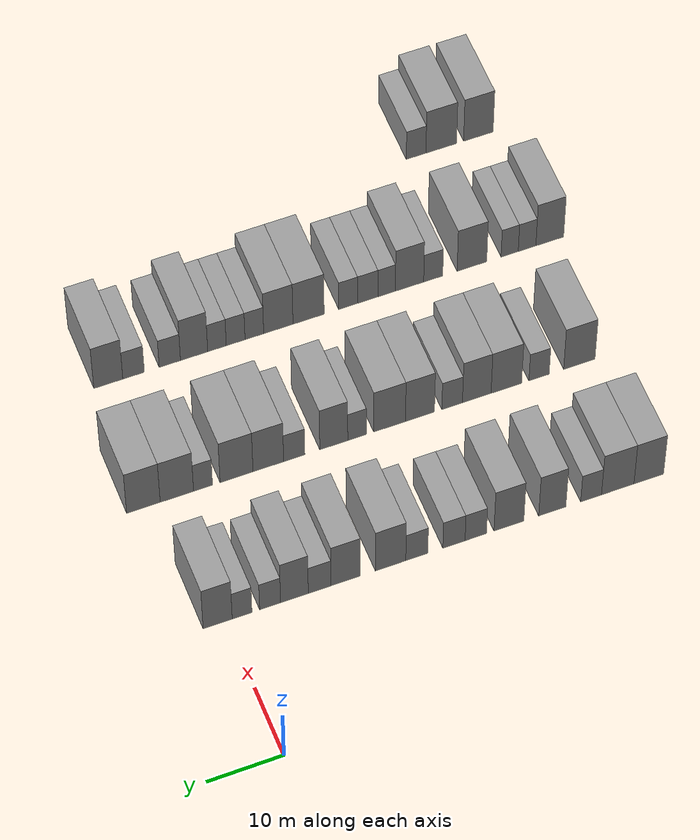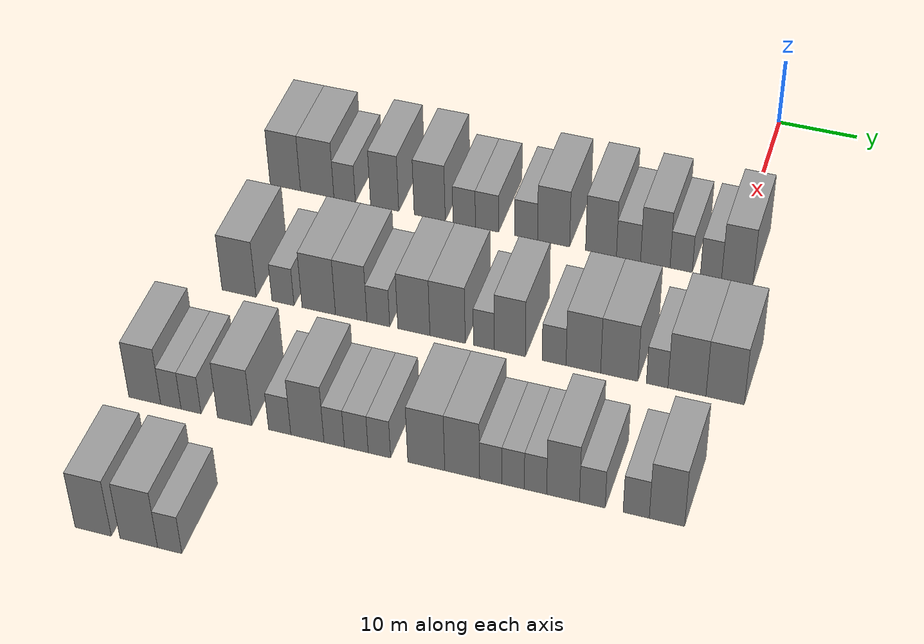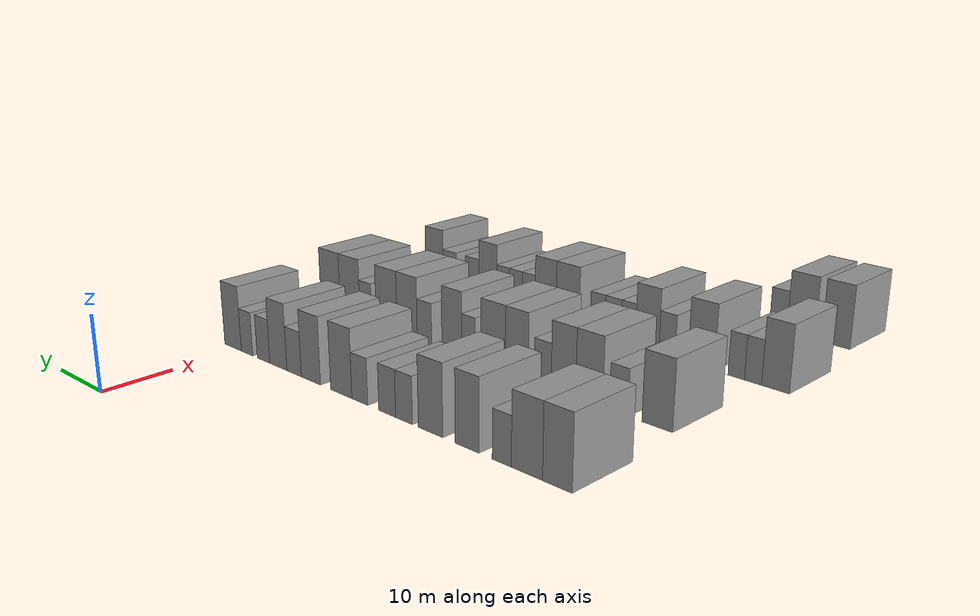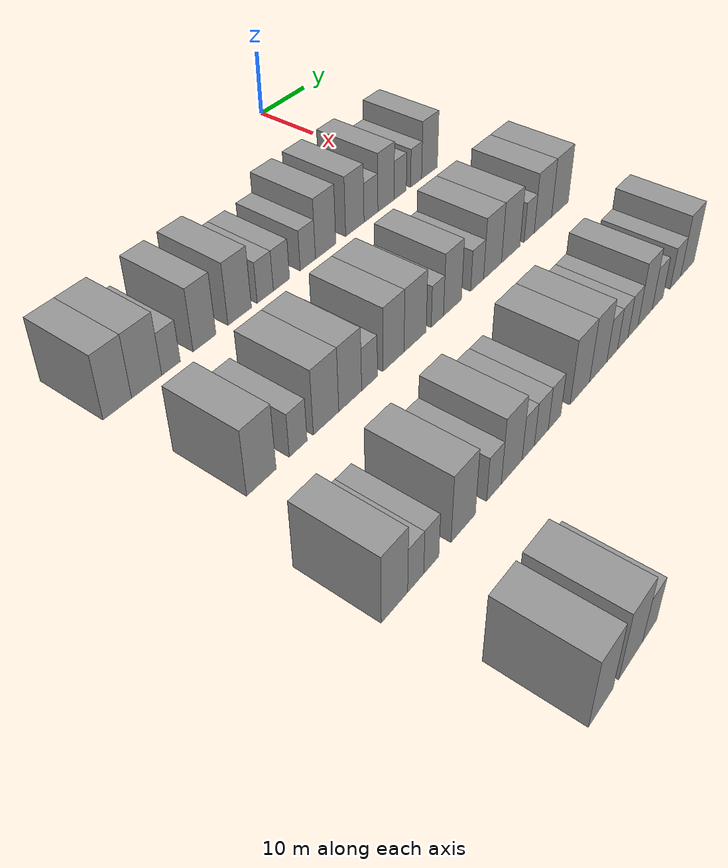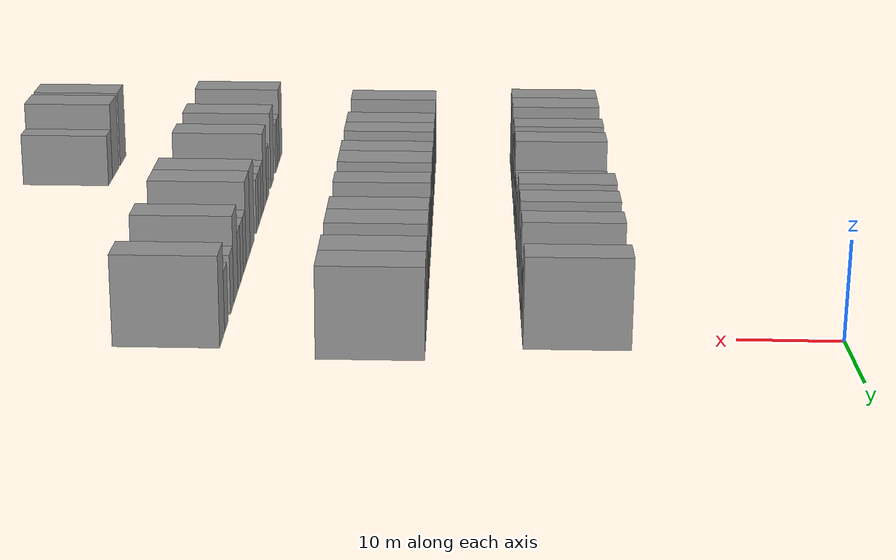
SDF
<sdf version="1.6">
 <world name="default">
  <model name="building_74">
   <static>1</static>
   <pose>25.0000 -56.3568 0 0.000000 0.000000 0.000000</pose>
   <link name="link">
    <pose>0 0 4.50 0 0 0</pose>
    <collision name="collision"><geometry><box><size>10.0000 4.0303 9.0000</size></box></geometry></collision>
    <visual name="visual">
     <cast_shadows>0</cast_shadows>
     <geometry><box><size>10.0000 4.0303 9.0000</size></box></geometry>
     <material>
      <script>
       <uri>model://grey_wall/materials/scripts</uri>
       <uri>model://grey_wall/materials/textures</uri>
       <name>vrc/grey_wall</name>
      </script>
     </material>
    </visual>
   </link>
  </model>
  <model name="building_75">
   <static>1</static>
   <pose>25.0000 -52.1348 0 0.000000 0.000000 0.000000</pose>
   <link name="link">
    <pose>0 0 4.50 0 0 0</pose>
    <collision name="collision"><geometry><box><size>10.0000 4.4137 9.0000</size></box></geometry></collision>
    <visual name="visual">
     <cast_shadows>0</cast_shadows>
     <geometry><box><size>10.0000 4.4137 9.0000</size></box></geometry>
     <material>
      <script>
       <uri>model://grey_wall/materials/scripts</uri>
       <uri>model://grey_wall/materials/textures</uri>
       <name>vrc/grey_wall</name>
      </script>
     </material>
    </visual>
   </link>
  </model>
  <model name="building_76">
   <static>1</static>
   <pose>25.0000 -48.5187 0 0.000000 0.000000 0.000000</pose>
   <link name="link">
    <pose>0 0 3.00 0 0 0</pose>
    <collision name="collision"><geometry><box><size>10.0000 2.8185 6.0000</size></box></geometry></collision>
    <visual name="visual">
     <cast_shadows>0</cast_shadows>
     <geometry><box><size>10.0000 2.8185 6.0000</size></box></geometry>
     <material>
      <script>
       <uri>model://grey_wall/materials/scripts</uri>
       <uri>model://grey_wall/materials/textures</uri>
       <name>vrc/grey_wall</name>
      </script>
     </material>
    </visual>
   </link>
  </model>
  <model name="building_77">
   <static>1</static>
   <pose>25.0000 -43.2736 0 0.000000 0.000000 0.000000</pose>
   <link name="link">
    <pose>0 0 4.50 0 0 0</pose>
    <collision name="collision"><geometry><box><size>10.0000 3.6717 9.0000</size></box></geometry></collision>
    <visual name="visual">
     <cast_shadows>0</cast_shadows>
     <geometry><box><size>10.0000 3.6717 9.0000</size></box></geometry>
     <material>
      <script>
       <uri>model://grey_wall/materials/scripts</uri>
       <uri>model://grey_wall/materials/textures</uri>
       <name>vrc/grey_wall</name>
      </script>
     </material>
    </visual>
   </link>
  </model>
  <model name="building_78">
   <static>1</static>
   <pose>25.0000 -37.4311 0 0.000000 0.000000 0.000000</pose>
   <link name="link">
    <pose>0 0 4.50 0 0 0</pose>
    <collision name="collision"><geometry><box><size>10.0000 4.0133 9.0000</size></box></geometry></collision>
    <visual name="visual">
     <cast_shadows>0</cast_shadows>
     <geometry><box><size>10.0000 4.0133 9.0000</size></box></geometry>
     <material>
      <script>
       <uri>model://grey_wall/materials/scripts</uri>
       <uri>model://grey_wall/materials/textures</uri>
       <name>vrc/grey_wall</name>
      </script>
     </material>
    </visual>
   </link>
  </model>
  <model name="building_79">
   <static>1</static>
   <pose>25.0000 -32.9863 0 0.000000 0.000000 0.000000</pose>
   <link name="link">
    <pose>0 0 3.00 0 0 0</pose>
    <collision name="collision"><geometry><box><size>10.0000 2.8762 6.0000</size></box></geometry></collision>
    <visual name="visual">
     <cast_shadows>0</cast_shadows>
     <geometry><box><size>10.0000 2.8762 6.0000</size></box></geometry>
     <material>
      <script>
       <uri>model://grey_wall/materials/scripts</uri>
       <uri>model://grey_wall/materials/textures</uri>
       <name>vrc/grey_wall</name>
      </script>
     </material>
    </visual>
   </link>
  </model>
  <model name="building_80">
   <static>1</static>
   <pose>25.0000 -30.0642 0 0.000000 0.000000 0.000000</pose>
   <link name="link">
    <pose>0 0 3.00 0 0 0</pose>
    <collision name="collision"><geometry><box><size>10.0000 2.9680 6.0000</size></box></geometry></collision>
    <visual name="visual">
     <cast_shadows>0</cast_shadows>
     <geometry><box><size>10.0000 2.9680 6.0000</size></box></geometry>
     <material>
      <script>
       <uri>model://grey_wall/materials/scripts</uri>
       <uri>model://grey_wall/materials/textures</uri>
       <name>vrc/grey_wall</name>
      </script>
     </material>
    </visual>
   </link>
  </model>
  <model name="building_81">
   <static>1</static>
   <pose>25.0000 -25.1114 0 0.000000 0.000000 0.000000</pose>
   <link name="link">
    <pose>0 0 3.00 0 0 0</pose>
    <collision name="collision"><geometry><box><size>10.0000 2.9376 6.0000</size></box></geometry></collision>
    <visual name="visual">
     <cast_shadows>0</cast_shadows>
     <geometry><box><size>10.0000 2.9376 6.0000</size></box></geometry>
     <material>
      <script>
       <uri>model://grey_wall/materials/scripts</uri>
       <uri>model://grey_wall/materials/textures</uri>
       <name>vrc/grey_wall</name>
      </script>
     </material>
    </visual>
   </link>
  </model>
  <model name="building_82">
   <static>1</static>
   <pose>25.0000 -21.6182 0 0.000000 0.000000 0.000000</pose>
   <link name="link">
    <pose>0 0 4.50 0 0 0</pose>
    <collision name="collision"><geometry><box><size>10.0000 4.0489 9.0000</size></box></geometry></collision>
    <visual name="visual">
     <cast_shadows>0</cast_shadows>
     <geometry><box><size>10.0000 4.0489 9.0000</size></box></geometry>
     <material>
      <script>
       <uri>model://grey_wall/materials/scripts</uri>
       <uri>model://grey_wall/materials/textures</uri>
       <name>vrc/grey_wall</name>
      </script>
     </material>
    </visual>
   </link>
  </model>
  <model name="building_83">
   <static>1</static>
   <pose>25.0000 -15.6659 0 0.000000 0.000000 0.000000</pose>
   <link name="link">
    <pose>0 0 4.50 0 0 0</pose>
    <collision name="collision"><geometry><box><size>10.0000 3.8557 9.0000</size></box></geometry></collision>
    <visual name="visual">
     <cast_shadows>0</cast_shadows>
     <geometry><box><size>10.0000 3.8557 9.0000</size></box></geometry>
     <material>
      <script>
       <uri>model://grey_wall/materials/scripts</uri>
       <uri>model://grey_wall/materials/textures</uri>
       <name>vrc/grey_wall</name>
      </script>
     </material>
    </visual>
   </link>
  </model>
  <model name="building_84">
   <static>1</static>
   <pose>25.0000 -12.2381 0 0.000000 0.000000 0.000000</pose>
   <link name="link">
    <pose>0 0 3.00 0 0 0</pose>
    <collision name="collision"><geometry><box><size>10.0000 3.0000 6.0000</size></box></geometry></collision>
    <visual name="visual">
     <cast_shadows>0</cast_shadows>
     <geometry><box><size>10.0000 3.0000 6.0000</size></box></geometry>
     <material>
      <script>
       <uri>model://grey_wall/materials/scripts</uri>
       <uri>model://grey_wall/materials/textures</uri>
       <name>vrc/grey_wall</name>
      </script>
     </material>
    </visual>
   </link>
  </model>
  <model name="building_85">
   <static>1</static>
   <pose>25.0000 -8.9162 0 0.000000 0.000000 0.000000</pose>
   <link name="link">
    <pose>0 0 4.50 0 0 0</pose>
    <collision name="collision"><geometry><box><size>10.0000 3.6439 9.0000</size></box></geometry></collision>
    <visual name="visual">
     <cast_shadows>0</cast_shadows>
     <geometry><box><size>10.0000 3.6439 9.0000</size></box></geometry>
     <material>
      <script>
       <uri>model://grey_wall/materials/scripts</uri>
       <uri>model://grey_wall/materials/textures</uri>
       <name>vrc/grey_wall</name>
      </script>
     </material>
    </visual>
   </link>
  </model>
  <model name="building_86">
   <static>1</static>
   <pose>25.0000 -5.7197 0 0.000000 0.000000 0.000000</pose>
   <link name="link">
    <pose>0 0 3.00 0 0 0</pose>
    <collision name="collision"><geometry><box><size>10.0000 2.7490 6.0000</size></box></geometry></collision>
    <visual name="visual">
     <cast_shadows>0</cast_shadows>
     <geometry><box><size>10.0000 2.7490 6.0000</size></box></geometry>
     <material>
      <script>
       <uri>model://grey_wall/materials/scripts</uri>
       <uri>model://grey_wall/materials/textures</uri>
       <name>vrc/grey_wall</name>
      </script>
     </material>
    </visual>
   </link>
  </model>
  <model name="building_87">
   <static>1</static>
   <pose>25.0000 -2.0507 0 0.000000 0.000000 0.000000</pose>
   <link name="link">
    <pose>0 0 3.00 0 0 0</pose>
    <collision name="collision"><geometry><box><size>10.0000 2.5891 6.0000</size></box></geometry></collision>
    <visual name="visual">
     <cast_shadows>0</cast_shadows>
     <geometry><box><size>10.0000 2.5891 6.0000</size></box></geometry>
     <material>
      <script>
       <uri>model://grey_wall/materials/scripts</uri>
       <uri>model://grey_wall/materials/textures</uri>
       <name>vrc/grey_wall</name>
      </script>
     </material>
    </visual>
   </link>
  </model>
  <model name="building_88">
   <static>1</static>
   <pose>25.0000 1.1462 0 0.000000 0.000000 0.000000</pose>
   <link name="link">
    <pose>0 0 4.50 0 0 0</pose>
    <collision name="collision"><geometry><box><size>10.0000 3.8047 9.0000</size></box></geometry></collision>
    <visual name="visual">
     <cast_shadows>0</cast_shadows>
     <geometry><box><size>10.0000 3.8047 9.0000</size></box></geometry>
     <material>
      <script>
       <uri>model://grey_wall/materials/scripts</uri>
       <uri>model://grey_wall/materials/textures</uri>
       <name>vrc/grey_wall</name>
      </script>
     </material>
    </visual>
   </link>
  </model>
  <model name="building_234">
   <static>1</static>
   <pose>44.0000 -54.9548 0 0.000000 0.000000 0.000000</pose>
   <link name="link">
    <pose>0 0 4.50 0 0 0</pose>
    <collision name="collision"><geometry><box><size>10.0000 4.3341 9.0000</size></box></geometry></collision>
    <visual name="visual">
     <cast_shadows>0</cast_shadows>
     <geometry><box><size>10.0000 4.3341 9.0000</size></box></geometry>
     <material>
      <script>
       <uri>model://grey_wall/materials/scripts</uri>
       <uri>model://grey_wall/materials/textures</uri>
       <name>vrc/grey_wall</name>
      </script>
     </material>
    </visual>
   </link>
  </model>
  <model name="building_235">
   <static>1</static>
   <pose>44.0000 -49.3943 0 0.000000 0.000000 0.000000</pose>
   <link name="link">
    <pose>0 0 3.00 0 0 0</pose>
    <collision name="collision"><geometry><box><size>10.0000 2.7870 6.0000</size></box></geometry></collision>
    <visual name="visual">
     <cast_shadows>0</cast_shadows>
     <geometry><box><size>10.0000 2.7870 6.0000</size></box></geometry>
     <material>
      <script>
       <uri>model://grey_wall/materials/scripts</uri>
       <uri>model://grey_wall/materials/textures</uri>
       <name>vrc/grey_wall</name>
      </script>
     </material>
    </visual>
   </link>
  </model>
  <model name="building_236">
   <static>1</static>
   <pose>44.0000 -44.9061 0 0.000000 0.000000 0.000000</pose>
   <link name="link">
    <pose>0 0 4.50 0 0 0</pose>
    <collision name="collision"><geometry><box><size>10.0000 4.1894 9.0000</size></box></geometry></collision>
    <visual name="visual">
     <cast_shadows>0</cast_shadows>
     <geometry><box><size>10.0000 4.1894 9.0000</size></box></geometry>
     <material>
      <script>
       <uri>model://grey_wall/materials/scripts</uri>
       <uri>model://grey_wall/materials/textures</uri>
       <name>vrc/grey_wall</name>
      </script>
     </material>
    </visual>
   </link>
  </model>
  <model name="building_237">
   <static>1</static>
   <pose>44.0000 -40.8512 0 0.000000 0.000000 0.000000</pose>
   <link name="link">
    <pose>0 0 4.50 0 0 0</pose>
    <collision name="collision"><geometry><box><size>10.0000 3.9205 9.0000</size></box></geometry></collision>
    <visual name="visual">
     <cast_shadows>0</cast_shadows>
     <geometry><box><size>10.0000 3.9205 9.0000</size></box></geometry>
     <material>
      <script>
       <uri>model://grey_wall/materials/scripts</uri>
       <uri>model://grey_wall/materials/textures</uri>
       <name>vrc/grey_wall</name>
      </script>
     </material>
    </visual>
   </link>
  </model>
  <model name="building_238">
   <static>1</static>
   <pose>44.0000 -37.4845 0 0.000000 0.000000 0.000000</pose>
   <link name="link">
    <pose>0 0 3.00 0 0 0</pose>
    <collision name="collision"><geometry><box><size>10.0000 2.8129 6.0000</size></box></geometry></collision>
    <visual name="visual">
     <cast_shadows>0</cast_shadows>
     <geometry><box><size>10.0000 2.8129 6.0000</size></box></geometry>
     <material>
      <script>
       <uri>model://grey_wall/materials/scripts</uri>
       <uri>model://grey_wall/materials/textures</uri>
       <name>vrc/grey_wall</name>
      </script>
     </material>
    </visual>
   </link>
  </model>
  <model name="building_239">
   <static>1</static>
   <pose>44.0000 -33.1069 0 0.000000 0.000000 0.000000</pose>
   <link name="link">
    <pose>0 0 4.50 0 0 0</pose>
    <collision name="collision"><geometry><box><size>10.0000 3.9422 9.0000</size></box></geometry></collision>
    <visual name="visual">
     <cast_shadows>0</cast_shadows>
     <geometry><box><size>10.0000 3.9422 9.0000</size></box></geometry>
     <material>
      <script>
       <uri>model://grey_wall/materials/scripts</uri>
       <uri>model://grey_wall/materials/textures</uri>
       <name>vrc/grey_wall</name>
      </script>
     </material>
    </visual>
   </link>
  </model>
  <model name="building_240">
   <static>1</static>
   <pose>44.0000 -28.9810 0 0.000000 0.000000 0.000000</pose>
   <link name="link">
    <pose>0 0 4.50 0 0 0</pose>
    <collision name="collision"><geometry><box><size>10.0000 4.3098 9.0000</size></box></geometry></collision>
    <visual name="visual">
     <cast_shadows>0</cast_shadows>
     <geometry><box><size>10.0000 4.3098 9.0000</size></box></geometry>
     <material>
      <script>
       <uri>model://grey_wall/materials/scripts</uri>
       <uri>model://grey_wall/materials/textures</uri>
       <name>vrc/grey_wall</name>
      </script>
     </material>
    </visual>
   </link>
  </model>
  <model name="building_241">
   <static>1</static>
   <pose>44.0000 -24.5726 0 0.000000 0.000000 0.000000</pose>
   <link name="link">
    <pose>0 0 3.00 0 0 0</pose>
    <collision name="collision"><geometry><box><size>10.0000 2.5069 6.0000</size></box></geometry></collision>
    <visual name="visual">
     <cast_shadows>0</cast_shadows>
     <geometry><box><size>10.0000 2.5069 6.0000</size></box></geometry>
     <material>
      <script>
       <uri>model://grey_wall/materials/scripts</uri>
       <uri>model://grey_wall/materials/textures</uri>
       <name>vrc/grey_wall</name>
      </script>
     </material>
    </visual>
   </link>
  </model>
  <model name="building_242">
   <static>1</static>
   <pose>44.0000 -21.4310 0 0.000000 0.000000 0.000000</pose>
   <link name="link">
    <pose>0 0 4.50 0 0 0</pose>
    <collision name="collision"><geometry><box><size>10.0000 3.7763 9.0000</size></box></geometry></collision>
    <visual name="visual">
     <cast_shadows>0</cast_shadows>
     <geometry><box><size>10.0000 3.7763 9.0000</size></box></geometry>
     <material>
      <script>
       <uri>model://grey_wall/materials/scripts</uri>
       <uri>model://grey_wall/materials/textures</uri>
       <name>vrc/grey_wall</name>
      </script>
     </material>
    </visual>
   </link>
  </model>
  <model name="building_243">
   <static>1</static>
   <pose>44.0000 -16.1158 0 0.000000 0.000000 0.000000</pose>
   <link name="link">
    <pose>0 0 3.00 0 0 0</pose>
    <collision name="collision"><geometry><box><size>10.0000 2.8542 6.0000</size></box></geometry></collision>
    <visual name="visual">
     <cast_shadows>0</cast_shadows>
     <geometry><box><size>10.0000 2.8542 6.0000</size></box></geometry>
     <material>
      <script>
       <uri>model://grey_wall/materials/scripts</uri>
       <uri>model://grey_wall/materials/textures</uri>
       <name>vrc/grey_wall</name>
      </script>
     </material>
    </visual>
   </link>
  </model>
  <model name="building_244">
   <static>1</static>
   <pose>44.0000 -12.6352 0 0.000000 0.000000 0.000000</pose>
   <link name="link">
    <pose>0 0 4.50 0 0 0</pose>
    <collision name="collision"><geometry><box><size>10.0000 4.1070 9.0000</size></box></geometry></collision>
    <visual name="visual">
     <cast_shadows>0</cast_shadows>
     <geometry><box><size>10.0000 4.1070 9.0000</size></box></geometry>
     <material>
      <script>
       <uri>model://grey_wall/materials/scripts</uri>
       <uri>model://grey_wall/materials/textures</uri>
       <name>vrc/grey_wall</name>
      </script>
     </material>
    </visual>
   </link>
  </model>
  <model name="building_245">
   <static>1</static>
   <pose>44.0000 -8.3828 0 0.000000 0.000000 0.000000</pose>
   <link name="link">
    <pose>0 0 4.50 0 0 0</pose>
    <collision name="collision"><geometry><box><size>10.0000 4.3976 9.0000</size></box></geometry></collision>
    <visual name="visual">
     <cast_shadows>0</cast_shadows>
     <geometry><box><size>10.0000 4.3976 9.0000</size></box></geometry>
     <material>
      <script>
       <uri>model://grey_wall/materials/scripts</uri>
       <uri>model://grey_wall/materials/textures</uri>
       <name>vrc/grey_wall</name>
      </script>
     </material>
    </visual>
   </link>
  </model>
  <model name="building_246">
   <static>1</static>
   <pose>44.0000 -3.9206 0 0.000000 0.000000 0.000000</pose>
   <link name="link">
    <pose>0 0 3.00 0 0 0</pose>
    <collision name="collision"><geometry><box><size>10.0000 2.5268 6.0000</size></box></geometry></collision>
    <visual name="visual">
     <cast_shadows>0</cast_shadows>
     <geometry><box><size>10.0000 2.5268 6.0000</size></box></geometry>
     <material>
      <script>
       <uri>model://grey_wall/materials/scripts</uri>
       <uri>model://grey_wall/materials/textures</uri>
       <name>vrc/grey_wall</name>
      </script>
     </material>
    </visual>
   </link>
  </model>
  <model name="building_247">
   <static>1</static>
   <pose>44.0000 -0.4420 0 0.000000 0.000000 0.000000</pose>
   <link name="link">
    <pose>0 0 4.50 0 0 0</pose>
    <collision name="collision"><geometry><box><size>10.0000 4.4305 9.0000</size></box></geometry></collision>
    <visual name="visual">
     <cast_shadows>0</cast_shadows>
     <geometry><box><size>10.0000 4.4305 9.0000</size></box></geometry>
     <material>
      <script>
       <uri>model://grey_wall/materials/scripts</uri>
       <uri>model://grey_wall/materials/textures</uri>
       <name>vrc/grey_wall</name>
      </script>
     </material>
    </visual>
   </link>
  </model>
  <model name="building_248">
   <static>1</static>
   <pose>44.0000 3.9941 0 0.000000 0.000000 0.000000</pose>
   <link name="link">
    <pose>0 0 4.50 0 0 0</pose>
    <collision name="collision"><geometry><box><size>10.0000 4.4417 9.0000</size></box></geometry></collision>
    <visual name="visual">
     <cast_shadows>0</cast_shadows>
     <geometry><box><size>10.0000 4.4417 9.0000</size></box></geometry>
     <material>
      <script>
       <uri>model://grey_wall/materials/scripts</uri>
       <uri>model://grey_wall/materials/textures</uri>
       <name>vrc/grey_wall</name>
      </script>
     </material>
    </visual>
   </link>
  </model>
  <model name="building_414">
   <static>1</static>
   <pose>63.0000 -58.8139 0 0.000000 0.000000 0.000000</pose>
   <link name="link">
    <pose>0 0 4.50 0 0 0</pose>
    <collision name="collision"><geometry><box><size>10.0000 3.9018 9.0000</size></box></geometry></collision>
    <visual name="visual">
     <cast_shadows>0</cast_shadows>
     <geometry><box><size>10.0000 3.9018 9.0000</size></box></geometry>
     <material>
      <script>
       <uri>model://grey_wall/materials/scripts</uri>
       <uri>model://grey_wall/materials/textures</uri>
       <name>vrc/grey_wall</name>
      </script>
     </material>
    </visual>
   </link>
  </model>
  <model name="building_415">
   <static>1</static>
   <pose>63.0000 -55.6257 0 0.000000 0.000000 0.000000</pose>
   <link name="link">
    <pose>0 0 3.00 0 0 0</pose>
    <collision name="collision"><geometry><box><size>10.0000 2.4747 6.0000</size></box></geometry></collision>
    <visual name="visual">
     <cast_shadows>0</cast_shadows>
     <geometry><box><size>10.0000 2.4747 6.0000</size></box></geometry>
     <material>
      <script>
       <uri>model://grey_wall/materials/scripts</uri>
       <uri>model://grey_wall/materials/textures</uri>
       <name>vrc/grey_wall</name>
      </script>
     </material>
    </visual>
   </link>
  </model>
  <model name="building_416">
   <static>1</static>
   <pose>63.0000 -53.1813 0 0.000000 0.000000 0.000000</pose>
   <link name="link">
    <pose>0 0 3.00 0 0 0</pose>
    <collision name="collision"><geometry><box><size>10.0000 2.4141 6.0000</size></box></geometry></collision>
    <visual name="visual">
     <cast_shadows>0</cast_shadows>
     <geometry><box><size>10.0000 2.4141 6.0000</size></box></geometry>
     <material>
      <script>
       <uri>model://grey_wall/materials/scripts</uri>
       <uri>model://grey_wall/materials/textures</uri>
       <name>vrc/grey_wall</name>
      </script>
     </material>
    </visual>
   </link>
  </model>
  <model name="building_417">
   <static>1</static>
   <pose>63.0000 -47.9079 0 0.000000 0.000000 0.000000</pose>
   <link name="link">
    <pose>0 0 4.50 0 0 0</pose>
    <collision name="collision"><geometry><box><size>10.0000 4.1326 9.0000</size></box></geometry></collision>
    <visual name="visual">
     <cast_shadows>0</cast_shadows>
     <geometry><box><size>10.0000 4.1326 9.0000</size></box></geometry>
     <material>
      <script>
       <uri>model://grey_wall/materials/scripts</uri>
       <uri>model://grey_wall/materials/textures</uri>
       <name>vrc/grey_wall</name>
      </script>
     </material>
    </visual>
   </link>
  </model>
  <model name="building_418">
   <static>1</static>
   <pose>63.0000 -42.5166 0 0.000000 0.000000 0.000000</pose>
   <link name="link">
    <pose>0 0 3.00 0 0 0</pose>
    <collision name="collision"><geometry><box><size>10.0000 2.6501 6.0000</size></box></geometry></collision>
    <visual name="visual">
     <cast_shadows>0</cast_shadows>
     <geometry><box><size>10.0000 2.6501 6.0000</size></box></geometry>
     <material>
      <script>
       <uri>model://grey_wall/materials/scripts</uri>
       <uri>model://grey_wall/materials/textures</uri>
       <name>vrc/grey_wall</name>
      </script>
     </material>
    </visual>
   </link>
  </model>
  <model name="building_419">
   <static>1</static>
   <pose>63.0000 -39.2282 0 0.000000 0.000000 0.000000</pose>
   <link name="link">
    <pose>0 0 4.50 0 0 0</pose>
    <collision name="collision"><geometry><box><size>10.0000 3.9266 9.0000</size></box></geometry></collision>
    <visual name="visual">
     <cast_shadows>0</cast_shadows>
     <geometry><box><size>10.0000 3.9266 9.0000</size></box></geometry>
     <material>
      <script>
       <uri>model://grey_wall/materials/scripts</uri>
       <uri>model://grey_wall/materials/textures</uri>
       <name>vrc/grey_wall</name>
      </script>
     </material>
    </visual>
   </link>
  </model>
  <model name="building_420">
   <static>1</static>
   <pose>63.0000 -36.0581 0 0.000000 0.000000 0.000000</pose>
   <link name="link">
    <pose>0 0 3.00 0 0 0</pose>
    <collision name="collision"><geometry><box><size>10.0000 2.4136 6.0000</size></box></geometry></collision>
    <visual name="visual">
     <cast_shadows>0</cast_shadows>
     <geometry><box><size>10.0000 2.4136 6.0000</size></box></geometry>
     <material>
      <script>
       <uri>model://grey_wall/materials/scripts</uri>
       <uri>model://grey_wall/materials/textures</uri>
       <name>vrc/grey_wall</name>
      </script>
     </material>
    </visual>
   </link>
  </model>
  <model name="building_421">
   <static>1</static>
   <pose>63.0000 -33.4547 0 0.000000 0.000000 0.000000</pose>
   <link name="link">
    <pose>0 0 3.00 0 0 0</pose>
    <collision name="collision"><geometry><box><size>10.0000 2.7931 6.0000</size></box></geometry></collision>
    <visual name="visual">
     <cast_shadows>0</cast_shadows>
     <geometry><box><size>10.0000 2.7931 6.0000</size></box></geometry>
     <material>
      <script>
       <uri>model://grey_wall/materials/scripts</uri>
       <uri>model://grey_wall/materials/textures</uri>
       <name>vrc/grey_wall</name>
      </script>
     </material>
    </visual>
   </link>
  </model>
  <model name="building_422">
   <static>1</static>
   <pose>63.0000 -30.7506 0 0.000000 0.000000 0.000000</pose>
   <link name="link">
    <pose>0 0 3.00 0 0 0</pose>
    <collision name="collision"><geometry><box><size>10.0000 2.6151 6.0000</size></box></geometry></collision>
    <visual name="visual">
     <cast_shadows>0</cast_shadows>
     <geometry><box><size>10.0000 2.6151 6.0000</size></box></geometry>
     <material>
      <script>
       <uri>model://grey_wall/materials/scripts</uri>
       <uri>model://grey_wall/materials/textures</uri>
       <name>vrc/grey_wall</name>
      </script>
     </material>
    </visual>
   </link>
  </model>
  <model name="building_423">
   <static>1</static>
   <pose>63.0000 -25.3016 0 0.000000 0.000000 0.000000</pose>
   <link name="link">
    <pose>0 0 4.50 0 0 0</pose>
    <collision name="collision"><geometry><box><size>10.0000 4.2830 9.0000</size></box></geometry></collision>
    <visual name="visual">
     <cast_shadows>0</cast_shadows>
     <geometry><box><size>10.0000 4.2830 9.0000</size></box></geometry>
     <material>
      <script>
       <uri>model://grey_wall/materials/scripts</uri>
       <uri>model://grey_wall/materials/textures</uri>
       <name>vrc/grey_wall</name>
      </script>
     </material>
    </visual>
   </link>
  </model>
  <model name="building_424">
   <static>1</static>
   <pose>63.0000 -21.1543 0 0.000000 0.000000 0.000000</pose>
   <link name="link">
    <pose>0 0 4.50 0 0 0</pose>
    <collision name="collision"><geometry><box><size>10.0000 4.0118 9.0000</size></box></geometry></collision>
    <visual name="visual">
     <cast_shadows>0</cast_shadows>
     <geometry><box><size>10.0000 4.0118 9.0000</size></box></geometry>
     <material>
      <script>
       <uri>model://grey_wall/materials/scripts</uri>
       <uri>model://grey_wall/materials/textures</uri>
       <name>vrc/grey_wall</name>
      </script>
     </material>
    </visual>
   </link>
  </model>
  <model name="building_425">
   <static>1</static>
   <pose>63.0000 -17.8754 0 0.000000 0.000000 0.000000</pose>
   <link name="link">
    <pose>0 0 3.00 0 0 0</pose>
    <collision name="collision"><geometry><box><size>10.0000 2.5458 6.0000</size></box></geometry></collision>
    <visual name="visual">
     <cast_shadows>0</cast_shadows>
     <geometry><box><size>10.0000 2.5458 6.0000</size></box></geometry>
     <material>
      <script>
       <uri>model://grey_wall/materials/scripts</uri>
       <uri>model://grey_wall/materials/textures</uri>
       <name>vrc/grey_wall</name>
      </script>
     </material>
    </visual>
   </link>
  </model>
  <model name="building_426">
   <static>1</static>
   <pose>63.0000 -15.3233 0 0.000000 0.000000 0.000000</pose>
   <link name="link">
    <pose>0 0 3.00 0 0 0</pose>
    <collision name="collision"><geometry><box><size>10.0000 2.5585 6.0000</size></box></geometry></collision>
    <visual name="visual">
     <cast_shadows>0</cast_shadows>
     <geometry><box><size>10.0000 2.5585 6.0000</size></box></geometry>
     <material>
      <script>
       <uri>model://grey_wall/materials/scripts</uri>
       <uri>model://grey_wall/materials/textures</uri>
       <name>vrc/grey_wall</name>
      </script>
     </material>
    </visual>
   </link>
  </model>
  <model name="building_427">
   <static>1</static>
   <pose>63.0000 -12.7820 0 0.000000 0.000000 0.000000</pose>
   <link name="link">
    <pose>0 0 3.00 0 0 0</pose>
    <collision name="collision"><geometry><box><size>10.0000 2.5239 6.0000</size></box></geometry></collision>
    <visual name="visual">
     <cast_shadows>0</cast_shadows>
     <geometry><box><size>10.0000 2.5239 6.0000</size></box></geometry>
     <material>
      <script>
       <uri>model://grey_wall/materials/scripts</uri>
       <uri>model://grey_wall/materials/textures</uri>
       <name>vrc/grey_wall</name>
      </script>
     </material>
    </visual>
   </link>
  </model>
  <model name="building_428">
   <static>1</static>
   <pose>63.0000 -9.6715 0 0.000000 0.000000 0.000000</pose>
   <link name="link">
    <pose>0 0 4.50 0 0 0</pose>
    <collision name="collision"><geometry><box><size>10.0000 3.6972 9.0000</size></box></geometry></collision>
    <visual name="visual">
     <cast_shadows>0</cast_shadows>
     <geometry><box><size>10.0000 3.6972 9.0000</size></box></geometry>
     <material>
      <script>
       <uri>model://grey_wall/materials/scripts</uri>
       <uri>model://grey_wall/materials/textures</uri>
       <name>vrc/grey_wall</name>
      </script>
     </material>
    </visual>
   </link>
  </model>
  <model name="building_429">
   <static>1</static>
   <pose>63.0000 -6.3809 0 0.000000 0.000000 0.000000</pose>
   <link name="link">
    <pose>0 0 3.00 0 0 0</pose>
    <collision name="collision"><geometry><box><size>10.0000 2.8840 6.0000</size></box></geometry></collision>
    <visual name="visual">
     <cast_shadows>0</cast_shadows>
     <geometry><box><size>10.0000 2.8840 6.0000</size></box></geometry>
     <material>
      <script>
       <uri>model://grey_wall/materials/scripts</uri>
       <uri>model://grey_wall/materials/textures</uri>
       <name>vrc/grey_wall</name>
      </script>
     </material>
    </visual>
   </link>
  </model>
  <model name="building_430">
   <static>1</static>
   <pose>63.0000 -1.4845 0 0.000000 0.000000 0.000000</pose>
   <link name="link">
    <pose>0 0 3.00 0 0 0</pose>
    <collision name="collision"><geometry><box><size>10.0000 2.9087 6.0000</size></box></geometry></collision>
    <visual name="visual">
     <cast_shadows>0</cast_shadows>
     <geometry><box><size>10.0000 2.9087 6.0000</size></box></geometry>
     <material>
      <script>
       <uri>model://grey_wall/materials/scripts</uri>
       <uri>model://grey_wall/materials/textures</uri>
       <name>vrc/grey_wall</name>
      </script>
     </material>
    </visual>
   </link>
  </model>
  <model name="building_431">
   <static>1</static>
   <pose>63.0000 1.9243 0 0.000000 0.000000 0.000000</pose>
   <link name="link">
    <pose>0 0 4.50 0 0 0</pose>
    <collision name="collision"><geometry><box><size>10.0000 3.9090 9.0000</size></box></geometry></collision>
    <visual name="visual">
     <cast_shadows>0</cast_shadows>
     <geometry><box><size>10.0000 3.9090 9.0000</size></box></geometry>
     <material>
      <script>
       <uri>model://grey_wall/materials/scripts</uri>
       <uri>model://grey_wall/materials/textures</uri>
       <name>vrc/grey_wall</name>
      </script>
     </material>
    </visual>
   </link>
  </model>
  <model name="building_594">
   <static>1</static>
   <pose>82.0000 -56.5470 0 0.000000 0.000000 0.000000</pose>
   <link name="link">
    <pose>0 0 4.50 0 0 0</pose>
    <collision name="collision"><geometry><box><size>10.0000 4.2101 9.0000</size></box></geometry></collision>
    <visual name="visual">
     <cast_shadows>0</cast_shadows>
     <geometry><box><size>10.0000 4.2101 9.0000</size></box></geometry>
     <material>
      <script>
       <uri>model://grey_wall/materials/scripts</uri>
       <uri>model://grey_wall/materials/textures</uri>
       <name>vrc/grey_wall</name>
      </script>
     </material>
    </visual>
   </link>
  </model>
  <model name="building_595">
   <static>1</static>
   <pose>82.0000 -51.2664 0 0.000000 0.000000 0.000000</pose>
   <link name="link">
    <pose>0 0 4.50 0 0 0</pose>
    <collision name="collision"><geometry><box><size>10.0000 4.3512 9.0000</size></box></geometry></collision>
    <visual name="visual">
     <cast_shadows>0</cast_shadows>
     <geometry><box><size>10.0000 4.3512 9.0000</size></box></geometry>
     <material>
      <script>
       <uri>model://grey_wall/materials/scripts</uri>
       <uri>model://grey_wall/materials/textures</uri>
       <name>vrc/grey_wall</name>
      </script>
     </material>
    </visual>
   </link>
  </model>
  <model name="building_596">
   <static>1</static>
   <pose>82.0000 -47.7027 0 0.000000 0.000000 0.000000</pose>
   <link name="link">
    <pose>0 0 3.00 0 0 0</pose>
    <collision name="collision"><geometry><box><size>10.0000 2.7763 6.0000</size></box></geometry></collision>
    <visual name="visual">
     <cast_shadows>0</cast_shadows>
     <geometry><box><size>10.0000 2.7763 6.0000</size></box></geometry>
     <material>
      <script>
       <uri>model://grey_wall/materials/scripts</uri>
       <uri>model://grey_wall/materials/textures</uri>
       <name>vrc/grey_wall</name>
      </script>
     </material>
    </visual>
   </link>
  </model>
 </world>
</sdf>
